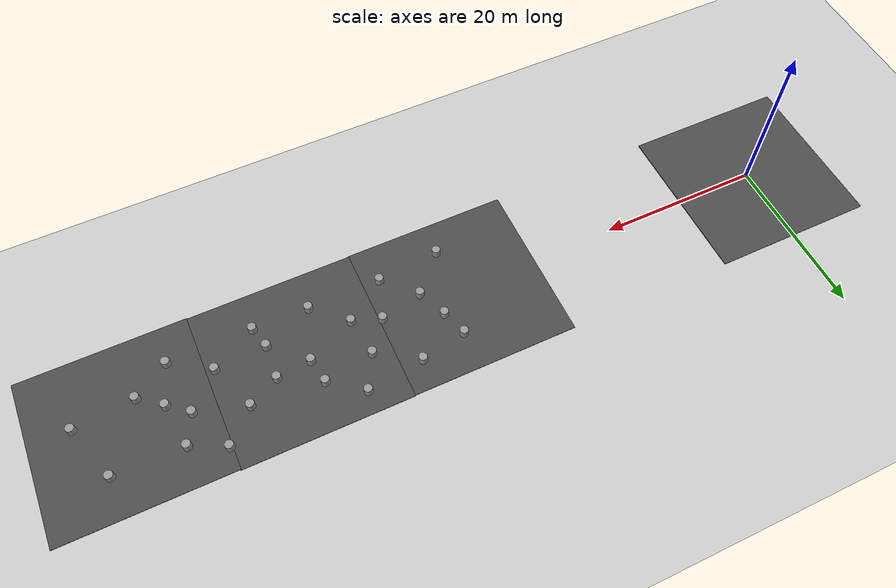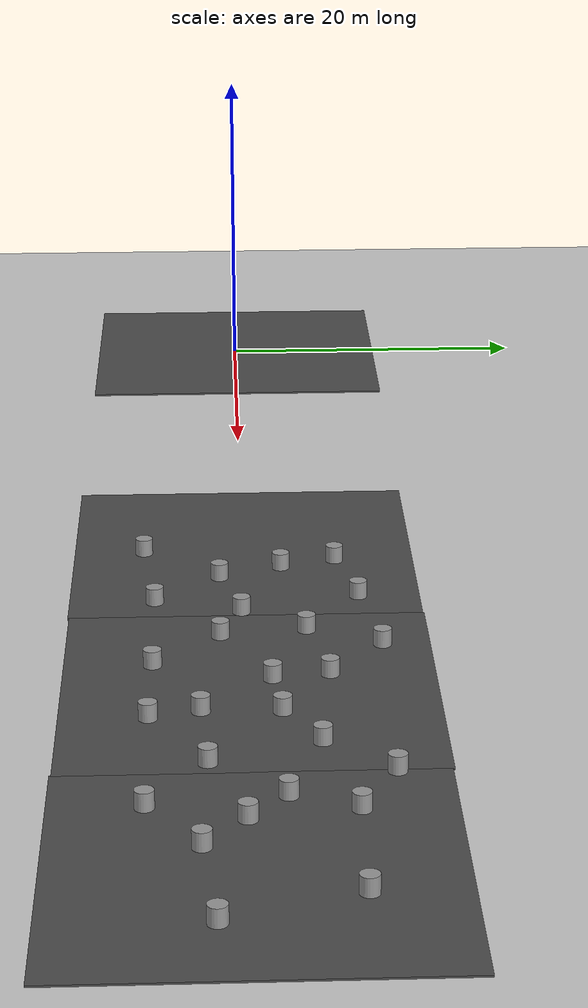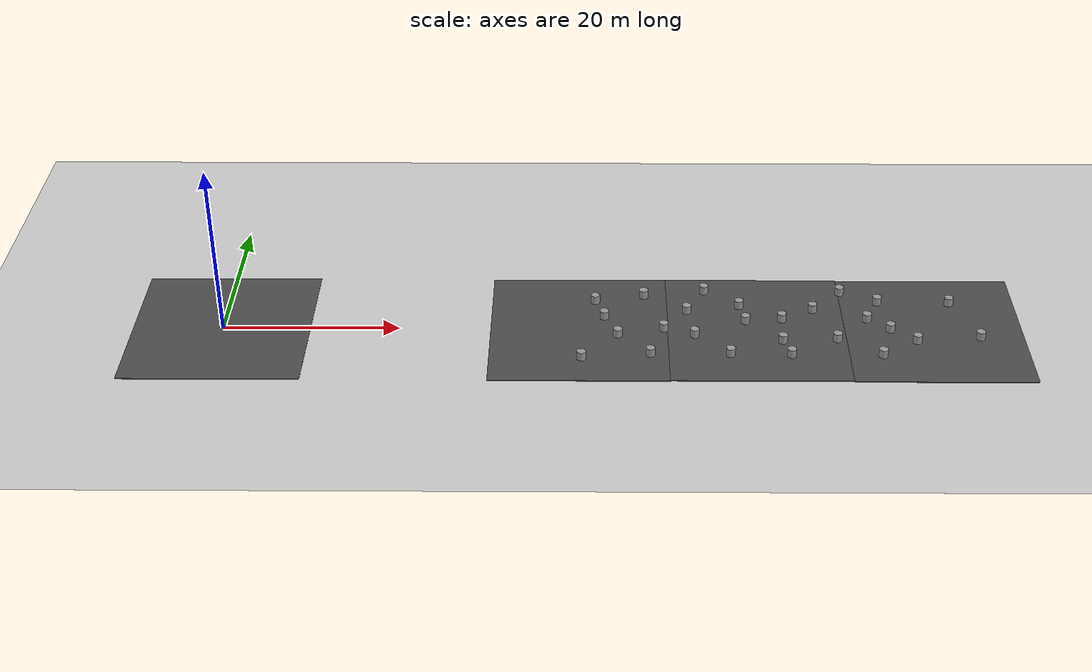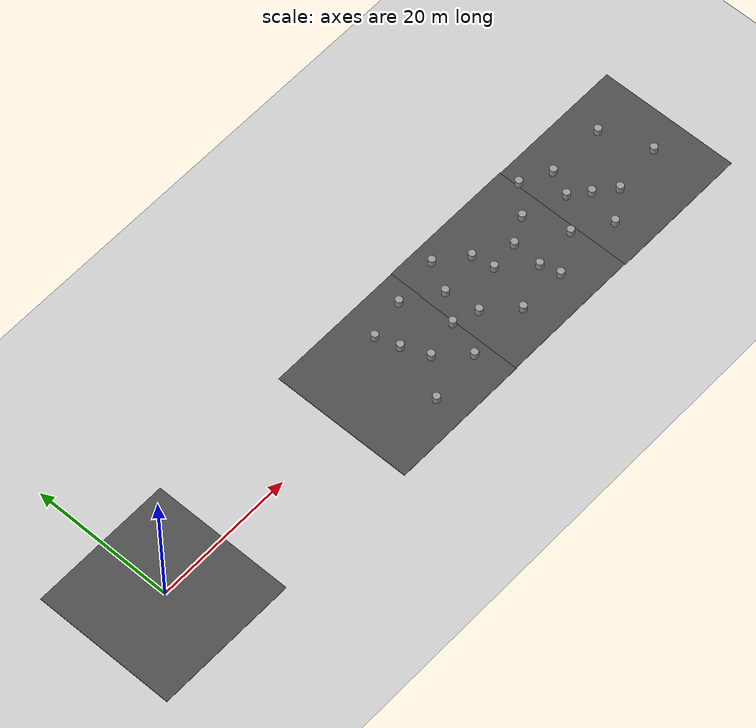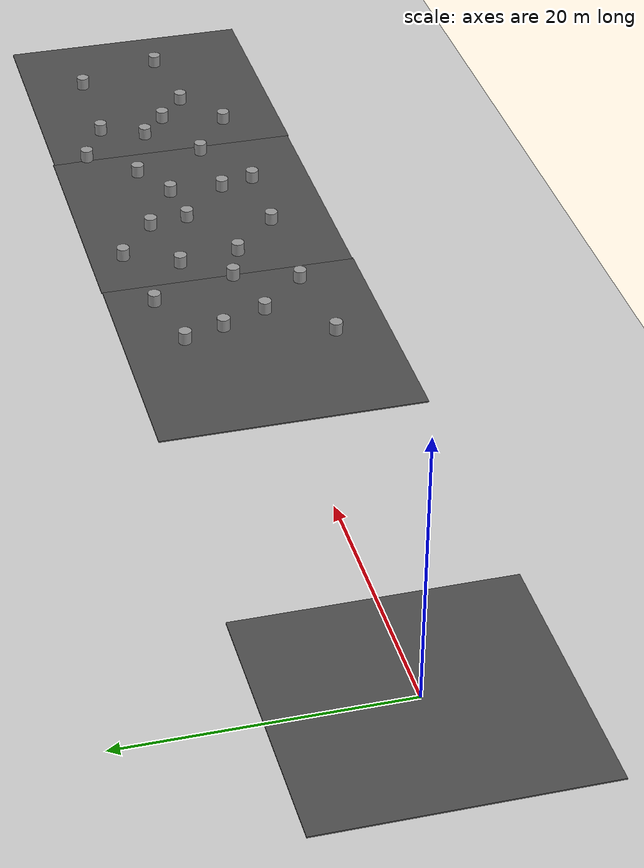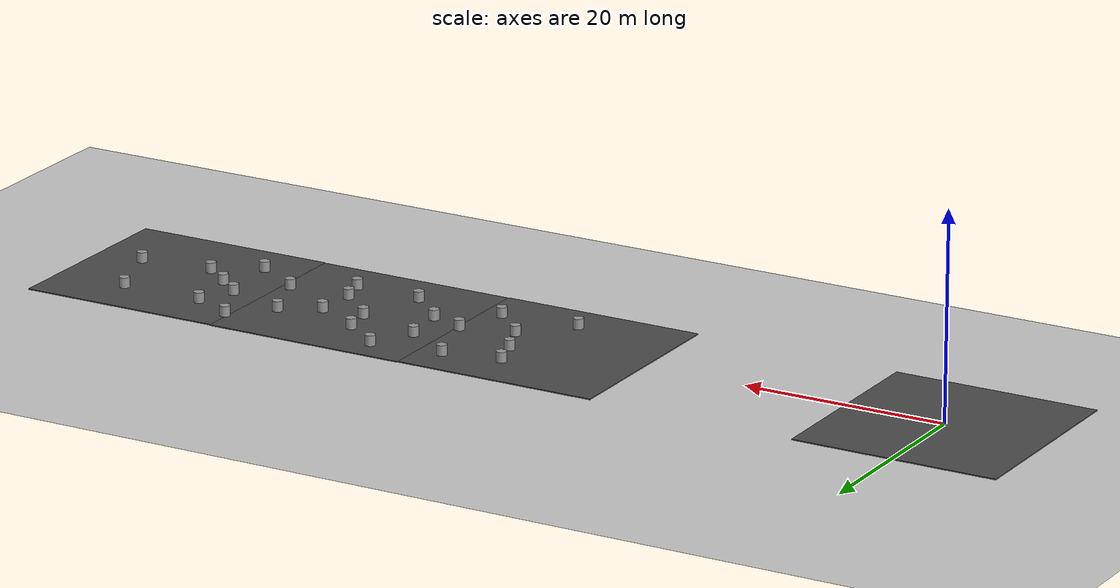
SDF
<sdf version="1.6">
 <world name="default">
  <model name="ground_plane">
   <static>1</static>
   <link name="link">
    <collision name="collision">
     <geometry><plane><normal>0 0 1</normal><size>100 100</size></plane></geometry>
     <surface>
      <contact><collide_bitmask>65535</collide_bitmask></contact>
      <friction><ode><mu>100</mu><mu2>50</mu2></ode></friction>
     </surface>
    </collision>
    <visual name="visual">
     <cast_shadows>0</cast_shadows>
     <geometry><plane><normal>0 0 1</normal><size>100 100</size></plane></geometry>
     <material>
      <script><uri>file://media/materials/scripts/gazebo.material</uri><name>Gazebo/Grey</name></script>
     </material>
    </visual>
   </link>
  </model>
  <model name="asphalt_plane">
   <static>1</static>
   <link name="link">
    <collision name="collision"><geometry><box><size>20 20 0.1</size></box></geometry></collision>
    <visual name="visual">
     <cast_shadows>0</cast_shadows>
     <geometry><box><size>20 20 0.1</size></box></geometry>
     <material>
      <script>
       <uri>model://asphalt_plane/materials/scripts</uri>
       <uri>model://asphalt_plane/materials/textures</uri>
       <name>vrc/asphalt</name>
      </script>
     </material>
    </visual>
   </link>
   <pose>-0.097341 0.103088 0 0 -0 0</pose>
  </model>
  <model name="asphalt_plane_1">
   <static>1</static>
   <link name="link">
    <collision name="collision"><geometry><box><size>20 20 0.1</size></box></geometry></collision>
    <visual name="visual">
     <cast_shadows>0</cast_shadows>
     <geometry><box><size>20 20 0.1</size></box></geometry>
     <material>
      <script>
       <uri>model://asphalt_plane/materials/scripts</uri>
       <uri>model://asphalt_plane/materials/textures</uri>
       <name>vrc/asphalt</name>
      </script>
     </material>
    </visual>
   </link>
   <pose>40.2585 0.024102 0 0 -0 0</pose>
  </model>
  <model name="unit_cylinder_20">
   <pose>40.5016 -5.86163 0.549991 1e-06 -0 6.5e-05</pose>
   <link name="link">
    <inertial>
     <mass>1</mass>
     <inertia><ixx>0.145833</ixx><ixy>0</ixy><ixz>0</ixz><iyy>0.145833</iyy><iyz>0</iyz><izz>0.125</izz></inertia>
    </inertial>
    <collision name="collision">
     <geometry><cylinder><radius>0.5</radius><length>1</length></cylinder></geometry>
    </collision>
    <visual name="visual">
     <geometry><cylinder><radius>0.5</radius><length>1</length></cylinder></geometry>
     <material>
      <script><name>Gazebo/Grey</name><uri>file://media/materials/scripts/gazebo.material</uri></script>
     </material>
    </visual>
   </link>
  </model>
  <model name="unit_cylinder_22">
   <pose>44.5677 -1.40731 0.549991 -1e-06 -0 5e-05</pose>
   <link name="link">
    <inertial>
     <mass>1</mass>
     <inertia><ixx>0.145833</ixx><ixy>0</ixy><ixz>0</ixz><iyy>0.145833</iyy><iyz>0</iyz><izz>0.125</izz></inertia>
    </inertial>
    <collision name="collision">
     <geometry><cylinder><radius>0.5</radius><length>1</length></cylinder></geometry>
    </collision>
    <visual name="visual">
     <geometry><cylinder><radius>0.5</radius><length>1</length></cylinder></geometry>
     <material>
      <script><name>Gazebo/Grey</name><uri>file://media/materials/scripts/gazebo.material</uri></script>
     </material>
    </visual>
   </link>
  </model>
  <model name="unit_cylinder_24">
   <pose>42.089 5.382 0.55 0 -0 0.000207</pose>
   <link name="link">
    <inertial>
     <mass>1</mass>
     <inertia><ixx>0.145833</ixx><ixy>0</ixy><ixz>0</ixz><iyy>0.145833</iyy><iyz>0</iyz><izz>0.125</izz></inertia>
    </inertial>
    <collision name="collision">
     <geometry><cylinder><radius>0.5</radius><length>1</length></cylinder></geometry>
    </collision>
    <visual name="visual">
     <geometry><cylinder><radius>0.5</radius><length>1</length></cylinder></geometry>
     <material>
      <script><name>Gazebo/Grey</name><uri>file://media/materials/scripts/gazebo.material</uri></script>
     </material>
    </visual>
   </link>
  </model>
  <model name="unit_cylinder_25">
   <pose>47.6601 6.49505 0.55 0 -0 2.2e-05</pose>
   <link name="link">
    <inertial>
     <mass>1</mass>
     <inertia><ixx>0.145833</ixx><ixy>0</ixy><ixz>0</ixz><iyy>0.145833</iyy><iyz>0</iyz><izz>0.125</izz></inertia>
    </inertial>
    <collision name="collision">
     <geometry><cylinder><radius>0.5</radius><length>1</length></cylinder></geometry>
    </collision>
    <visual name="visual">
     <geometry><cylinder><radius>0.5</radius><length>1</length></cylinder></geometry>
     <material>
      <script><name>Gazebo/Grey</name><uri>file://media/materials/scripts/gazebo.material</uri></script>
     </material>
    </visual>
   </link>
  </model>
  <model name="asphalt_plane_2">
   <static>1</static>
   <link name="link">
    <collision name="collision"><geometry><box><size>20 20 0.1</size></box></geometry></collision>
    <visual name="visual">
     <cast_shadows>0</cast_shadows>
     <geometry><box><size>20 20 0.1</size></box></geometry>
     <material>
      <script>
       <uri>model://asphalt_plane/materials/scripts</uri>
       <uri>model://asphalt_plane/materials/textures</uri>
       <name>vrc/asphalt</name>
      </script>
     </material>
    </visual>
   </link>
   <pose>60.1662 0.094258 0 0 -0 0</pose>
  </model>
  <model name="unit_cylinder_29">
   <pose>49.7665 -0.20544 0.54999 0 -0 5.9e-05</pose>
   <link name="link">
    <inertial>
     <mass>1</mass>
     <inertia><ixx>0.145833</ixx><ixy>0</ixy><ixz>0</ixz><iyy>0.145833</iyy><iyz>0</iyz><izz>0.125</izz></inertia>
    </inertial>
    <collision name="collision">
     <geometry><cylinder><radius>0.5</radius><length>1</length></cylinder></geometry>
    </collision>
    <visual name="visual">
     <geometry><cylinder><radius>0.5</radius><length>1</length></cylinder></geometry>
     <material>
      <script><name>Gazebo/Grey</name><uri>file://media/materials/scripts/gazebo.material</uri></script>
     </material>
    </visual>
   </link>
  </model>
  <model name="unit_cylinder_30">
   <pose>53.1815 -1.42308 0.54999 0 0 -0.000217</pose>
   <link name="link">
    <inertial>
     <mass>1</mass>
     <inertia><ixx>0.145833</ixx><ixy>0</ixy><ixz>0</ixz><iyy>0.145833</iyy><iyz>0</iyz><izz>0.125</izz></inertia>
    </inertial>
    <collision name="collision">
     <geometry><cylinder><radius>0.5</radius><length>1</length></cylinder></geometry>
    </collision>
    <visual name="visual">
     <geometry><cylinder><radius>0.5</radius><length>1</length></cylinder></geometry>
     <material>
      <script><name>Gazebo/Grey</name><uri>file://media/materials/scripts/gazebo.material</uri></script>
     </material>
    </visual>
   </link>
  </model>
  <model name="unit_cylinder_31">
   <pose>58.5295 4.41163 0.55 -0 -0 -0.000226</pose>
   <link name="link">
    <inertial>
     <mass>1</mass>
     <inertia><ixx>0.145833</ixx><ixy>0</ixy><ixz>0</ixz><iyy>0.145833</iyy><iyz>0</iyz><izz>0.125</izz></inertia>
    </inertial>
    <collision name="collision">
     <geometry><cylinder><radius>0.5</radius><length>1</length></cylinder></geometry>
    </collision>
    <visual name="visual">
     <geometry><cylinder><radius>0.5</radius><length>1</length></cylinder></geometry>
     <material>
      <script><name>Gazebo/Grey</name><uri>file://media/materials/scripts/gazebo.material</uri></script>
     </material>
    </visual>
   </link>
  </model>
  <model name="unit_cylinder_32">
   <pose>63.0011 -2.50564 0.550001 -3e-06 -1e-06 4.9e-05</pose>
   <link name="link">
    <inertial>
     <mass>1</mass>
     <inertia><ixx>0.145833</ixx><ixy>0</ixy><ixz>0</ixz><iyy>0.145833</iyy><iyz>0</iyz><izz>0.125</izz></inertia>
    </inertial>
    <collision name="collision">
     <geometry><cylinder><radius>0.5</radius><length>1</length></cylinder></geometry>
    </collision>
    <visual name="visual">
     <geometry><cylinder><radius>0.5</radius><length>1</length></cylinder></geometry>
     <material>
      <script><name>Gazebo/Grey</name><uri>file://media/materials/scripts/gazebo.material</uri></script>
     </material>
    </visual>
   </link>
  </model>
  <model name="unit_cylinder_33">
   <pose>57.0015 -5.10264 0.54999 0 -0 8.9e-05</pose>
   <link name="link">
    <inertial>
     <mass>1</mass>
     <inertia><ixx>0.145833</ixx><ixy>0</ixy><ixz>0</ixz><iyy>0.145833</iyy><iyz>0</iyz><izz>0.125</izz></inertia>
    </inertial>
    <collision name="collision">
     <geometry><cylinder><radius>0.5</radius><length>1</length></cylinder></geometry>
    </collision>
    <visual name="visual">
     <geometry><cylinder><radius>0.5</radius><length>1</length></cylinder></geometry>
     <material>
      <script><name>Gazebo/Grey</name><uri>file://media/materials/scripts/gazebo.material</uri></script>
     </material>
    </visual>
   </link>
  </model>
  <model name="unit_cylinder_35">
   <pose>52.5088 3.35615 0.549991 -1e-06 -2e-06 8.9e-05</pose>
   <link name="link">
    <inertial>
     <mass>1</mass>
     <inertia><ixx>0.145833</ixx><ixy>0</ixy><ixz>0</ixz><iyy>0.145833</iyy><iyz>0</iyz><izz>0.125</izz></inertia>
    </inertial>
    <collision name="collision">
     <geometry><cylinder><radius>0.5</radius><length>1</length></cylinder></geometry>
    </collision>
    <visual name="visual">
     <geometry><cylinder><radius>0.5</radius><length>1</length></cylinder></geometry>
     <material>
      <script><name>Gazebo/Grey</name><uri>file://media/materials/scripts/gazebo.material</uri></script>
     </material>
    </visual>
   </link>
  </model>
  <model name="unit_cylinder_36">
   <pose>48.1541 -5.11417 0.55 1e-06 -0 -7.3e-05</pose>
   <link name="link">
    <inertial>
     <mass>1</mass>
     <inertia><ixx>0.145833</ixx><ixy>0</ixy><ixz>0</ixz><iyy>0.145833</iyy><iyz>0</iyz><izz>0.125</izz></inertia>
    </inertial>
    <collision name="collision">
     <geometry><cylinder><radius>0.5</radius><length>1</length></cylinder></geometry>
    </collision>
    <visual name="visual">
     <geometry><cylinder><radius>0.5</radius><length>1</length></cylinder></geometry>
     <material>
      <script><name>Gazebo/Grey</name><uri>file://media/materials/scripts/gazebo.material</uri></script>
     </material>
    </visual>
   </link>
  </model>
  <model name="unit_cylinder_37">
   <pose>66.8905 3.67118 0.55 0 -0 3e-05</pose>
   <link name="link">
    <inertial>
     <mass>1</mass>
     <inertia><ixx>0.145833</ixx><ixy>0</ixy><ixz>0</ixz><iyy>0.145833</iyy><iyz>0</iyz><izz>0.125</izz></inertia>
    </inertial>
    <collision name="collision">
     <geometry><cylinder><radius>0.5</radius><length>1</length></cylinder></geometry>
    </collision>
    <visual name="visual">
     <geometry><cylinder><radius>0.5</radius><length>1</length></cylinder></geometry>
     <material>
      <script><name>Gazebo/Grey</name><uri>file://media/materials/scripts/gazebo.material</uri></script>
     </material>
    </visual>
   </link>
  </model>
  <model name="asphalt_plane_3">
   <static>1</static>
   <link name="link">
    <collision name="collision"><geometry><box><size>20 20 0.1</size></box></geometry></collision>
    <visual name="visual">
     <cast_shadows>0</cast_shadows>
     <geometry><box><size>20 20 0.1</size></box></geometry>
     <material>
      <script>
       <uri>model://asphalt_plane/materials/scripts</uri>
       <uri>model://asphalt_plane/materials/textures</uri>
       <name>vrc/asphalt</name>
      </script>
     </material>
    </visual>
   </link>
   <pose>80.1174 -0.001873 0 0 -0 0</pose>
  </model>
  <model name="unit_cylinder_38">
   <pose>69.1297 -2.15405 0.55 -0 -0 -8.4e-05</pose>
   <link name="link">
    <inertial>
     <mass>1</mass>
     <inertia><ixx>0.145833</ixx><ixy>0</ixy><ixz>0</ixz><iyy>0.145833</iyy><iyz>0</iyz><izz>0.125</izz></inertia>
    </inertial>
    <collision name="collision">
     <geometry><cylinder><radius>0.5</radius><length>1</length></cylinder></geometry>
    </collision>
    <visual name="visual">
     <geometry><cylinder><radius>0.5</radius><length>1</length></cylinder></geometry>
     <material>
      <script><name>Gazebo/Grey</name><uri>file://media/materials/scripts/gazebo.material</uri></script>
     </material>
    </visual>
   </link>
  </model>
  <model name="unit_cylinder_39">
   <pose>74.4476 5.23315 0.549992 1e-06 -4e-06 2.5e-05</pose>
   <link name="link">
    <inertial>
     <mass>1</mass>
     <inertia><ixx>0.145833</ixx><ixy>0</ixy><ixz>0</ixz><iyy>0.145833</iyy><iyz>0</iyz><izz>0.125</izz></inertia>
    </inertial>
    <collision name="collision">
     <geometry><cylinder><radius>0.5</radius><length>1</length></cylinder></geometry>
    </collision>
    <visual name="visual">
     <geometry><cylinder><radius>0.5</radius><length>1</length></cylinder></geometry>
     <material>
      <script><name>Gazebo/Grey</name><uri>file://media/materials/scripts/gazebo.material</uri></script>
     </material>
    </visual>
   </link>
  </model>
  <model name="unit_cylinder_40">
   <pose>77.9966 -2.4471 0.54999 0 -0 -5.5e-05</pose>
   <link name="link">
    <inertial>
     <mass>1</mass>
     <inertia><ixx>0.145833</ixx><ixy>0</ixy><ixz>0</ixz><iyy>0.145833</iyy><iyz>0</iyz><izz>0.125</izz></inertia>
    </inertial>
    <collision name="collision">
     <geometry><cylinder><radius>0.5</radius><length>1</length></cylinder></geometry>
    </collision>
    <visual name="visual">
     <geometry><cylinder><radius>0.5</radius><length>1</length></cylinder></geometry>
     <material>
      <script><name>Gazebo/Grey</name><uri>file://media/materials/scripts/gazebo.material</uri></script>
     </material>
    </visual>
   </link>
  </model>
  <model name="unit_cylinder_41">
   <pose>72.8801 1.76248 0.55 -1e-06 -0 -0.000117</pose>
   <link name="link">
    <inertial>
     <mass>1</mass>
     <inertia><ixx>0.145833</ixx><ixy>0</ixy><ixz>0</ixz><iyy>0.145833</iyy><iyz>0</iyz><izz>0.125</izz></inertia>
    </inertial>
    <collision name="collision">
     <geometry><cylinder><radius>0.5</radius><length>1</length></cylinder></geometry>
    </collision>
    <visual name="visual">
     <geometry><cylinder><radius>0.5</radius><length>1</length></cylinder></geometry>
     <material>
      <script><name>Gazebo/Grey</name><uri>file://media/materials/scripts/gazebo.material</uri></script>
     </material>
    </visual>
   </link>
  </model>
  <model name="unit_cylinder_42">
   <pose>73.8211 -5.22089 0.54999 0 -0 -0.000294</pose>
   <link name="link">
    <inertial>
     <mass>1</mass>
     <inertia><ixx>0.145833</ixx><ixy>0</ixy><ixz>0</ixz><iyy>0.145833</iyy><iyz>0</iyz><izz>0.125</izz></inertia>
    </inertial>
    <collision name="collision">
     <geometry><cylinder><radius>0.5</radius><length>1</length></cylinder></geometry>
    </collision>
    <visual name="visual">
     <geometry><cylinder><radius>0.5</radius><length>1</length></cylinder></geometry>
     <material>
      <script><name>Gazebo/Grey</name><uri>file://media/materials/scripts/gazebo.material</uri></script>
     </material>
    </visual>
   </link>
  </model>
  <model name="unit_cylinder_43">
   <pose>59.0613 1.32233 0.550001 0 2e-06 0.000103</pose>
   <link name="link">
    <inertial>
     <mass>1</mass>
     <inertia><ixx>0.145833</ixx><ixy>0</ixy><ixz>0</ixz><iyy>0.145833</iyy><iyz>0</iyz><izz>0.125</izz></inertia>
    </inertial>
    <collision name="collision">
     <geometry><cylinder><radius>0.5</radius><length>1</length></cylinder></geometry>
    </collision>
    <visual name="visual">
     <geometry><cylinder><radius>0.5</radius><length>1</length></cylinder></geometry>
     <material>
      <script><name>Gazebo/Grey</name><uri>file://media/materials/scripts/gazebo.material</uri></script>
     </material>
    </visual>
   </link>
  </model>
  <model name="unit_cylinder_44">
   <pose>63.2124 1.74457 0.54999 0 -0 3.7e-05</pose>
   <link name="link">
    <inertial>
     <mass>1</mass>
     <inertia><ixx>0.145833</ixx><ixy>0</ixy><ixz>0</ixz><iyy>0.145833</iyy><iyz>0</iyz><izz>0.125</izz></inertia>
    </inertial>
    <collision name="collision">
     <geometry><cylinder><radius>0.5</radius><length>1</length></cylinder></geometry>
    </collision>
    <visual name="visual">
     <geometry><cylinder><radius>0.5</radius><length>1</length></cylinder></geometry>
     <material>
      <script><name>Gazebo/Grey</name><uri>file://media/materials/scripts/gazebo.material</uri></script>
     </material>
    </visual>
   </link>
  </model>
  <model name="unit_cylinder_45">
   <pose>63.7291 -5.23363 0.549991 -1e-06 -0 -1.7e-05</pose>
   <link name="link">
    <inertial>
     <mass>1</mass>
     <inertia><ixx>0.145833</ixx><ixy>0</ixy><ixz>0</ixz><iyy>0.145833</iyy><iyz>0</iyz><izz>0.125</izz></inertia>
    </inertial>
    <collision name="collision">
     <geometry><cylinder><radius>0.5</radius><length>1</length></cylinder></geometry>
    </collision>
    <visual name="visual">
     <geometry><cylinder><radius>0.5</radius><length>1</length></cylinder></geometry>
     <material>
      <script><name>Gazebo/Grey</name><uri>file://media/materials/scripts/gazebo.material</uri></script>
     </material>
    </visual>
   </link>
  </model>
  <model name="unit_cylinder_46">
   <pose>70.3576 7.23157 0.54999 0 0 -3e-06</pose>
   <link name="link">
    <inertial>
     <mass>1</mass>
     <inertia><ixx>0.145833</ixx><ixy>0</ixy><ixz>0</ixz><iyy>0.145833</iyy><iyz>0</iyz><izz>0.125</izz></inertia>
    </inertial>
    <collision name="collision">
     <geometry><cylinder><radius>0.5</radius><length>1</length></cylinder></geometry>
    </collision>
    <visual name="visual">
     <geometry><cylinder><radius>0.5</radius><length>1</length></cylinder></geometry>
     <material>
      <script><name>Gazebo/Grey</name><uri>file://media/materials/scripts/gazebo.material</uri></script>
     </material>
    </visual>
   </link>
  </model>
  <model name="unit_cylinder_47">
   <pose>75.2769 -0.252893 0.550001 0 -2e-06 -1.9e-05</pose>
   <link name="link">
    <inertial>
     <mass>1</mass>
     <inertia><ixx>0.145833</ixx><ixy>0</ixy><ixz>0</ixz><iyy>0.145833</iyy><iyz>0</iyz><izz>0.125</izz></inertia>
    </inertial>
    <collision name="collision">
     <geometry><cylinder><radius>0.5</radius><length>1</length></cylinder></geometry>
    </collision>
    <visual name="visual">
     <geometry><cylinder><radius>0.5</radius><length>1</length></cylinder></geometry>
     <material>
      <script><name>Gazebo/Grey</name><uri>file://media/materials/scripts/gazebo.material</uri></script>
     </material>
    </visual>
   </link>
  </model>
  <model name="unit_cylinder_48">
   <pose>54.6487 7.45632 0.55 -0 -0 -0.000266</pose>
   <link name="link">
    <inertial>
     <mass>1</mass>
     <inertia><ixx>0.145833</ixx><ixy>0</ixy><ixz>0</ixz><iyy>0.145833</iyy><iyz>0</iyz><izz>0.125</izz></inertia>
    </inertial>
    <collision name="collision">
     <geometry><cylinder><radius>0.5</radius><length>1</length></cylinder></geometry>
    </collision>
    <visual name="visual">
     <geometry><cylinder><radius>0.5</radius><length>1</length></cylinder></geometry>
     <material>
      <script><name>Gazebo/Grey</name><uri>file://media/materials/scripts/gazebo.material</uri></script>
     </material>
    </visual>
   </link>
  </model>
  <model name="unit_cylinder_49">
   <pose>43.0826 2.18653 0.550001 1e-06 1e-06 2e-05</pose>
   <link name="link">
    <inertial>
     <mass>1</mass>
     <inertia><ixx>0.145833</ixx><ixy>0</ixy><ixz>0</ixz><iyy>0.145833</iyy><iyz>0</iyz><izz>0.125</izz></inertia>
    </inertial>
    <collision name="collision">
     <geometry><cylinder><radius>0.5</radius><length>1</length></cylinder></geometry>
    </collision>
    <visual name="visual">
     <geometry><cylinder><radius>0.5</radius><length>1</length></cylinder></geometry>
     <material>
      <script><name>Gazebo/Grey</name><uri>file://media/materials/scripts/gazebo.material</uri></script>
     </material>
    </visual>
   </link>
  </model>
  <model name="unit_cylinder_50">
   <pose>82.6952 5.12032 0.549998 3e-06 1e-06 6.9e-05</pose>
   <link name="link">
    <inertial>
     <mass>1</mass>
     <inertia><ixx>0.145833</ixx><ixy>0</ixy><ixz>0</ixz><iyy>0.145833</iyy><iyz>0</iyz><izz>0.125</izz></inertia>
    </inertial>
    <collision name="collision">
     <geometry><cylinder><radius>0.5</radius><length>1</length></cylinder></geometry>
    </collision>
    <visual name="visual">
     <geometry><cylinder><radius>0.5</radius><length>1</length></cylinder></geometry>
     <material>
      <script><name>Gazebo/Grey</name><uri>file://media/materials/scripts/gazebo.material</uri></script>
     </material>
    </visual>
   </link>
  </model>
  <model name="unit_cylinder_51">
   <pose>85.1758 -1.76002 0.550002 3e-06 3e-06 -8e-06</pose>
   <link name="link">
    <inertial>
     <mass>1</mass>
     <inertia><ixx>0.145833</ixx><ixy>0</ixy><ixz>0</ixz><iyy>0.145833</iyy><iyz>0</iyz><izz>0.125</izz></inertia>
    </inertial>
    <collision name="collision">
     <geometry><cylinder><radius>0.5</radius><length>1</length></cylinder></geometry>
    </collision>
    <visual name="visual">
     <geometry><cylinder><radius>0.5</radius><length>1</length></cylinder></geometry>
     <material>
      <script><name>Gazebo/Grey</name><uri>file://media/materials/scripts/gazebo.material</uri></script>
     </material>
    </visual>
   </link>
  </model>
 </world>
</sdf>
